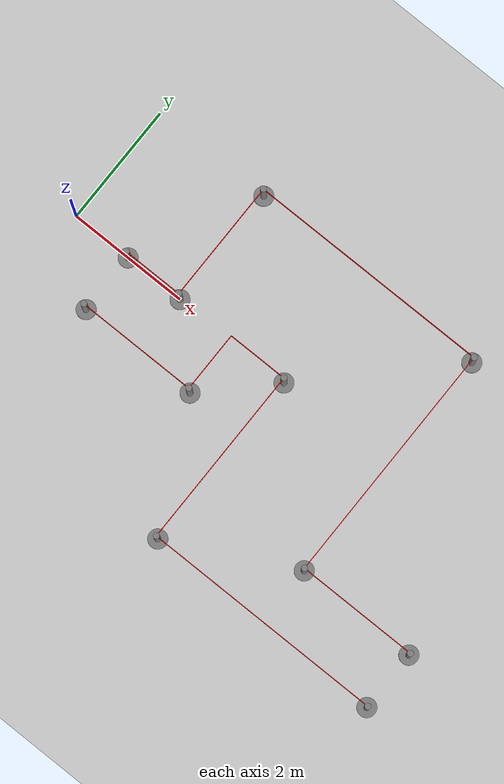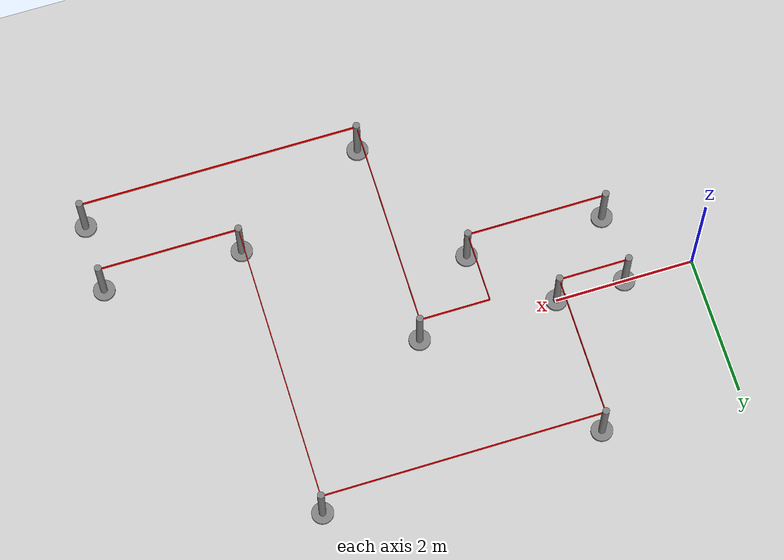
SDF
<?xml version="1.0" ?>
<sdf version='1.4'>
  <world name='default'>

    <physics type='ode'>
      <max_step_size>0.001</max_step_size>
      <real_time_factor>1</real_time_factor>
      <real_time_update_rate>1000</real_time_update_rate>
      <magnetic_field>34 0 -36</magnetic_field>
      <gravity>0 0 -9.8</gravity>
    </physics>

    <spherical_coordinates>
      <surface_model>EARTH_WGS84</surface_model>
      <latitude_deg>0</latitude_deg>
      <longitude_deg>0</longitude_deg>
      <elevation>0</elevation>
      <heading_deg>0</heading_deg>
    </spherical_coordinates>

    <!-- A global light source -->
   <scene>
      <sky>
        <clouds>
          <speed>12</speed>
        </clouds>
      </sky>
   </scene>

   <include>
     <uri>model://sun</uri>
   </include>

    <!-- A ground plane -->
    <include>
      <uri>model://ground_plane</uri>
    </include>

    <!-- A maze made of barrier with belt -->
    <include>
      <uri>model://barrier_with_belt_1</uri>
      <name>entrance_1</name>
      <pose>1 0 0 0 0 0</pose>
    </include>

    <include>
      <uri>model://barrier_with_belt_2</uri>
      <name>entrance_2</name>
      <pose>1 -1 0 0 0 0</pose>
    </include>

    <include>
      <uri>model://barrier_with_belt_2_dual</uri>
      <name>entrance_3</name>
      <pose>2 2 0 0 0 -1.5708</pose>
    </include>

    <include>
      <uri>model://barrier_with_belt_1_dual</uri>
      <name>entrance_4</name>
      <pose>3 -1 0 0 0 1.5708</pose>
    </include>

    <include>
      <uri>model://barrier_with_belt_2_dual</uri>
      <name>middle_1</name>
      <pose>6 2 0 0 0 3.141593</pose>
    </include>

    <include>
      <uri>model://barrier_with_belt_1_dual</uri>
      <name>middle_2</name>
      <pose>4 0 0 0 0 3.141593</pose>
    </include>

    <include>
      <uri>model://barrier_with_belt_2_dual</uri>
      <name>middle_3</name>
      <pose>4 -3 0 0 0 0</pose>
    </include>

   <include>
      <uri>model://barrier_with_belt_2_dual</uri>
      <name>middle_4</name>
      <pose>6 -2 0 0 0 0</pose>
    </include>

   <include>
      <uri>model://barrier_single</uri>
      <name>exit_1</name>
      <pose>8 -2 0 0 0 0</pose>
    </include>

   <include>
      <uri>model://barrier_single_with_2</uri>
      <name>exit_2</name>
      <pose>8 -3 0 0 0 3.1415926</pose>
    </include>

  </world>
</sdf>

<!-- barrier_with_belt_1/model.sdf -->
<sdf version='1.6'>
  <model name="barrier_with_belt_1">
    <static>true</static> <!-- Static model -->

    <!-- Base Plate_1 -->
    <link name="base1">
      <visual name="base1_visual">
        <geometry>
          <cylinder>
            <radius>0.155</radius> <!-- Diameter: 31 cm -->
            <length>0.04</length> <!-- Thickness: 4 cm -->
          </cylinder>
        </geometry>
        <material>
          <ambient>0.5 0.5 0.5 1</ambient> <!-- Grey color -->
        </material>
      </visual>
      <collision name="base1_collision">
        <geometry>
          <cylinder>
            <radius>0.155</radius>
            <length>0.04</length>
          </cylinder>
        </geometry>
      </collision>
      <pose>0 0 0.02 0 0 0</pose> <!-- Base at ground level -->
    </link>

    <!-- Base Plate_2 -->
    <link name="base2">
      <visual name="base2_visual">
        <geometry>
          <cylinder>
            <radius>0.155</radius> <!-- Diameter: 31 cm -->
            <length>0.04</length> <!-- Thickness: 4 cm -->
          </cylinder>
        </geometry>
        <material>
          <ambient>0.5 0.5 0.5 1</ambient> <!-- Grey color -->
        </material>
      </visual>
      <collision name="base2_collision">
        <geometry>
          <cylinder>
            <radius>0.155</radius>
            <length>0.04</length>
          </cylinder>
        </geometry>
      </collision>
      <pose>1 0 0.02 0 0 0</pose> <!-- Base at ground level -->
    </link>

    <!-- Pillar_1 -->
    <link name="cylinder1">
      <visual name="cylinder1_visual">
        <geometry>
          <cylinder>
            <radius>0.05</radius> <!-- Radius: 5 cm -->
            <length>0.89</length> <!-- Height: 89 cm -->
          </cylinder>
        </geometry>
        <material>
          <ambient>0.5 0.5 0.5 1</ambient> <!-- Grey color -->
        </material>
      </visual>
      <collision name="cylinder1_collision">
        <geometry>
          <cylinder>
            <radius>0.05</radius>
            <length>0.89</length>
          </cylinder>
        </geometry>
      </collision>
      <pose>0 0 0.46 0 0 0</pose> <!-- Placed on top of the base -->
    </link>

    <!-- Pillar_2 -->
    <link name="cylinder2">
      <visual name="cylinder2_visual">
        <geometry>
          <cylinder>
            <radius>0.05</radius> <!-- Radius: 5 cm -->
            <length>0.89</length> <!-- Height: 89 cm -->
          </cylinder>
        </geometry>
        <material>
          <ambient>0.5 0.5 0.5 1</ambient> <!-- Grey color -->
        </material>
      </visual>
      <collision name="cylinder2_collision">
        <geometry>
          <cylinder>
            <radius>0.05</radius>
            <length>0.89</length>
          </cylinder>
        </geometry>
      </collision>
      <pose>1 0 0.46 0 0 0</pose> <!-- Placed on top of the base -->
    </link>

    <!-- Belt -->
    <link name="tape">
      <visual name="tape_visual">
        <geometry>
          <box>
            <size>1.0 0.048 0.01</size> <!-- Length, Width, Thickness -->
          </box>
        </geometry>
        <material>
          <ambient>1 0 0 1</ambient> <!-- Red color -->
        </material>
      </visual>
      <collision name="tape_collision">
        <geometry>
          <box>
            <size>1.0 0.048 0.01</size>
          </box>
        </geometry>
      </collision>
      <pose>0.50 0 0.84 1.571 0 0</pose> <!-- Aligned with the pillar -->
    </link>

    <!-- Fixed Joints -->
    <joint name="cylinder1_to_base_1" type="fixed">
      <parent>base1</parent>
      <child>cylinder1</child>
    </joint>
    <joint name="cylinder2_to_base_2" type="fixed">
      <parent>base2</parent>
      <child>cylinder2</child>
    </joint>
    <joint name="cylinder1_to_tape" type="fixed">
      <parent>cylinder1</parent>
      <child>tape</child>
    </joint>
    <joint name="cylinder2_to_tape" type="fixed">
      <parent>cylinder2</parent>
      <child>tape</child>
    </joint>
  </model>
</sdf>

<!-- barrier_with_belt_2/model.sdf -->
<sdf version='1.6'>
  <model name="barrier_with_belt_2">
    <static>true</static> <!-- Static model -->

    <!-- Base Plate -->
    <link name="base1">
      <visual name="base1_visual">
        <geometry>
          <cylinder>
            <radius>0.155</radius> <!-- Diameter: 31 cm -->
            <length>0.04</length> <!-- Thickness: 4 cm -->
          </cylinder>
        </geometry>
        <material>
          <ambient>0.5 0.5 0.5 1</ambient> <!-- Grey color -->
        </material>
      </visual>
      <collision name="base1_collision">
        <geometry>
          <cylinder>
            <radius>0.155</radius>
            <length>0.04</length>
          </cylinder>
        </geometry>
      </collision>
      <pose>0 0 0.02 0 0 0</pose> <!-- Base at ground level -->
    </link>

    <!-- Pillar -->
    <link name="cylinder1">
      <visual name="cylinder1_visual">
        <geometry>
          <cylinder>
            <radius>0.05</radius> <!-- Radius: 5 cm -->
            <length>0.89</length> <!-- Height: 89 cm -->
          </cylinder>
        </geometry>
        <material>
          <ambient>0.5 0.5 0.5 1</ambient> <!-- Grey color -->
        </material>
      </visual>
      <collision name="cylinder1_collision">
        <geometry>
          <cylinder>
            <radius>0.05</radius>
            <length>0.89</length>
          </cylinder>
        </geometry>
      </collision>
      <pose>0 0 0.46 0 0 0</pose> <!-- Placed on top of the base -->
    </link>

    <!-- Belt -->
    <link name="tape">
      <visual name="tape_visual">
        <geometry>
          <box>
            <size>2.0 0.048 0.01</size> <!-- Length, Width, Thickness -->
          </box>
        </geometry>
        <material>
          <ambient>1 0 0 1</ambient> <!-- Red color -->
        </material>
      </visual>
      <collision name="tape_collision">
        <geometry>
          <box>
            <size>1.0 0.048 0.01</size>
          </box>
        </geometry>
      </collision>
      <pose>1.0 0 0.84 1.571 0 0</pose> <!-- Aligned with the pillar -->
    </link>

    <!-- Fixed Joints -->
    <joint name="cylinder1_to_base" type="fixed">
      <parent>base1</parent>
      <child>cylinder1</child>
    </joint>
    <joint name="cylinder1_to_tape" type="fixed">
      <parent>cylinder1</parent>
      <child>tape</child>
    </joint>

  </model>
</sdf>

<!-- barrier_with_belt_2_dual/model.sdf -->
<sdf version='1.6'>
  <model name="barrier_with_belt_1_dual">
    <static>true</static> <!-- Static model -->

    <!-- Base Plate -->
    <link name="base1">
      <visual name="base1_visual">
        <geometry>
          <cylinder>
            <radius>0.155</radius> <!-- Diameter: 31 cm -->
            <length>0.04</length> <!-- Thickness: 4 cm -->
          </cylinder>
        </geometry>
        <material>
          <ambient>0.5 0.5 0.5 1</ambient> <!-- Grey color -->
        </material>
      </visual>
      <collision name="base1_collision">
        <geometry>
          <cylinder>
            <radius>0.155</radius>
            <length>0.04</length>
          </cylinder>
        </geometry>
      </collision>
      <pose>0 0 0.02 0 0 0</pose> <!-- Base at ground level -->
    </link>

    <!-- Pillar -->
    <link name="cylinder1">
      <visual name="cylinder1_visual">
        <geometry>
          <cylinder>
            <radius>0.05</radius> <!-- Radius: 5 cm -->
            <length>0.89</length> <!-- Height: 89 cm -->
          </cylinder>
        </geometry>
        <material>
          <ambient>0.5 0.5 0.5 1</ambient> <!-- Grey color -->
        </material>
      </visual>
      <collision name="cylinder1_collision">
        <geometry>
          <cylinder>
            <radius>0.05</radius>
            <length>0.89</length>
          </cylinder>
        </geometry>
      </collision>
      <pose>0 0 0.46 0 0 0</pose> <!-- Placed on top of the base -->
    </link>

    <!-- Belt_1 -->
    <link name="tape_1">
      <visual name="tape_visual_1">
        <geometry>
          <box>
            <size>2.0 0.048 0.01</size> <!-- Length, Width, Thickness -->
          </box>
        </geometry>
        <material>
          <ambient>1 0 0 1</ambient> <!-- Red color -->
        </material>
      </visual>
      <collision name="tape_collision">
        <geometry>
          <box>
            <size>2.0 0.048 0.01</size>
          </box>
        </geometry>
      </collision>
      <pose>1.0 0 0.84 1.571 0 0</pose> <!-- Aligned with the pillar -->
    </link>

    <!-- Belt_2 -->
    <link name="tape_2">
      <visual name="tape_visual_2">
        <geometry>
          <box>
            <size>2.0 0.048 0.01</size> <!-- Length, Width, Thickness -->
          </box>
        </geometry>
        <material>
          <ambient>1 0 0 1</ambient> <!-- Red color -->
        </material>
      </visual>
      <collision name="tape_collision">
        <geometry>
          <box>
            <size>2.0 0.048 0.01</size>
          </box>
        </geometry>
      </collision>
      <pose>0 1.0 0.84 1.571 0 1.571</pose> <!-- Aligned with the pillar -->
    </link>

    <!-- Fixed Joints -->
    <joint name="cylinder1_to_base" type="fixed">
      <parent>base1</parent>
      <child>cylinder1</child>
    </joint>
    <joint name="cylinder1_to_tape_1" type="fixed">
      <parent>cylinder1</parent>
      <child>tape_1</child>
    </joint>
    <joint name="cylinder1_to_tape_2" type="fixed">
      <parent>cylinder1</parent>
      <child>tape_2</child>
    </joint>

  </model>
</sdf>

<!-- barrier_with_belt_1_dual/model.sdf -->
<sdf version='1.6'>
  <model name="barrier_with_belt_1_dual">
    <static>true</static> <!-- Static model -->

    <!-- Base Plate -->
    <link name="base1">
      <visual name="base1_visual">
        <geometry>
          <cylinder>
            <radius>0.155</radius> <!-- Diameter: 31 cm -->
            <length>0.04</length> <!-- Thickness: 4 cm -->
          </cylinder>
        </geometry>
        <material>
          <ambient>0.5 0.5 0.5 1</ambient> <!-- Grey color -->
        </material>
      </visual>
      <collision name="base1_collision">
        <geometry>
          <cylinder>
            <radius>0.155</radius>
            <length>0.04</length>
          </cylinder>
        </geometry>
      </collision>
      <pose>0 0 0.02 0 0 0</pose> <!-- Base at ground level -->
    </link>

    <!-- Pillar -->
    <link name="cylinder1">
      <visual name="cylinder1_visual">
        <geometry>
          <cylinder>
            <radius>0.05</radius> <!-- Radius: 5 cm -->
            <length>0.89</length> <!-- Height: 89 cm -->
          </cylinder>
        </geometry>
        <material>
          <ambient>0.5 0.5 0.5 1</ambient> <!-- Grey color -->
        </material>
      </visual>
      <collision name="cylinder1_collision">
        <geometry>
          <cylinder>
            <radius>0.05</radius>
            <length>0.89</length>
          </cylinder>
        </geometry>
      </collision>
      <pose>0 0 0.46 0 0 0</pose> <!-- Placed on top of the base -->
    </link>

    <!-- Belt_1 -->
    <link name="tape_1">
      <visual name="tape_visual_1">
        <geometry>
          <box>
            <size>1.0 0.048 0.01</size> <!-- Length, Width, Thickness -->
          </box>
        </geometry>
        <material>
          <ambient>1 0 0 1</ambient> <!-- Red color -->
        </material>
      </visual>
      <collision name="tape_collision">
        <geometry>
          <box>
            <size>1.0 0.048 0.01</size>
          </box>
        </geometry>
      </collision>
      <pose>0.50 0 0.84 1.571 0 0</pose> <!-- Aligned with the pillar -->
    </link>

    <!-- Belt_2 -->
    <link name="tape_2">
      <visual name="tape_visual_2">
        <geometry>
          <box>
            <size>1.0 0.048 0.01</size> <!-- Length, Width, Thickness -->
          </box>
        </geometry>
        <material>
          <ambient>1 0 0 1</ambient> <!-- Red color -->
        </material>
      </visual>
      <collision name="tape_collision">
        <geometry>
          <box>
            <size>1.0 0.048 0.01</size>
          </box>
        </geometry>
      </collision>
      <pose>0 0.5 0.84 1.571 0 1.571</pose> <!-- Aligned with the pillar -->
    </link>

    <!-- Fixed Joints -->
    <joint name="cylinder1_to_base" type="fixed">
      <parent>base1</parent>
      <child>cylinder1</child>
    </joint>
    <joint name="cylinder1_to_tape_1" type="fixed">
      <parent>cylinder1</parent>
      <child>tape_1</child>
    </joint>
    <joint name="cylinder1_to_tape_2" type="fixed">
      <parent>cylinder1</parent>
      <child>tape_2</child>
    </joint>

  </model>
</sdf>

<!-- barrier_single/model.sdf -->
<sdf version='1.6'>
  <model name="barrier_with_belt_1">
    <static>true</static> <!-- Static model -->

    <!-- Base Plate_1 -->
    <link name="base1">
      <visual name="base1_visual">
        <geometry>
          <cylinder>
            <radius>0.155</radius> <!-- Diameter: 31 cm -->
            <length>0.04</length> <!-- Thickness: 4 cm -->
          </cylinder>
        </geometry>
        <material>
          <ambient>0.5 0.5 0.5 1</ambient> <!-- Grey color -->
        </material>
      </visual>
      <collision name="base1_collision">
        <geometry>
          <cylinder>
            <radius>0.155</radius>
            <length>0.04</length>
          </cylinder>
        </geometry>
      </collision>
      <pose>0 0 0.02 0 0 0</pose> <!-- Base at ground level -->
    </link>

    <!-- Pillar_1 -->
    <link name="cylinder1">
      <visual name="cylinder1_visual">
        <geometry>
          <cylinder>
            <radius>0.05</radius> <!-- Radius: 5 cm -->
            <length>0.89</length> <!-- Height: 89 cm -->
          </cylinder>
        </geometry>
        <material>
          <ambient>0.5 0.5 0.5 1</ambient> <!-- Grey color -->
        </material>
      </visual>
      <collision name="cylinder1_collision">
        <geometry>
          <cylinder>
            <radius>0.05</radius>
            <length>0.89</length>
          </cylinder>
        </geometry>
      </collision>
      <pose>0 0 0.46 0 0 0</pose> <!-- Placed on top of the base -->
    </link>

    <!-- Fixed Joints -->
    <joint name="cylinder1_to_base_1" type="fixed">
      <parent>base1</parent>
      <child>cylinder1</child>
    </joint>
  </model>
</sdf>

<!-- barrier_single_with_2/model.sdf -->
<sdf version='1.6'>
  <model name="barrier_with_belt_2">
    <static>true</static> <!-- Static model -->

    <!-- Base Plate -->
    <link name="base1">
      <visual name="base1_visual">
        <geometry>
          <cylinder>
            <radius>0.155</radius> <!-- Diameter: 31 cm -->
            <length>0.04</length> <!-- Thickness: 4 cm -->
          </cylinder>
        </geometry>
        <material>
          <ambient>0.5 0.5 0.5 1</ambient> <!-- Grey color -->
        </material>
      </visual>
      <collision name="base1_collision">
        <geometry>
          <cylinder>
            <radius>0.155</radius>
            <length>0.04</length>
          </cylinder>
        </geometry>
      </collision>
      <pose>0 0 0.02 0 0 0</pose> <!-- Base at ground level -->
    </link>

    <!-- Pillar -->
    <link name="cylinder1">
      <visual name="cylinder1_visual">
        <geometry>
          <cylinder>
            <radius>0.05</radius> <!-- Radius: 5 cm -->
            <length>0.89</length> <!-- Height: 89 cm -->
          </cylinder>
        </geometry>
        <material>
          <ambient>0.5 0.5 0.5 1</ambient> <!-- Grey color -->
        </material>
      </visual>
      <collision name="cylinder1_collision">
        <geometry>
          <cylinder>
            <radius>0.05</radius>
            <length>0.89</length>
          </cylinder>
        </geometry>
      </collision>
      <pose>0 0 0.46 0 0 0</pose> <!-- Placed on top of the base -->
    </link>

    <!-- Belt -->
    <link name="tape">
      <visual name="tape_visual">
        <geometry>
          <box>
            <size>2.0 0.048 0.01</size> <!-- Length, Width, Thickness -->
          </box>
        </geometry>
        <material>
          <ambient>1 0 0 1</ambient> <!-- Red color -->
        </material>
      </visual>
      <collision name="tape_collision">
        <geometry>
          <box>
            <size>2.0 0.048 0.01</size>
          </box>
        </geometry>
      </collision>
      <pose>1.0 0 0.84 1.571 0 0</pose> <!-- Aligned with the pillar -->
    </link>

    <!-- Fixed Joints -->
    <joint name="cylinder1_to_base" type="fixed">
      <parent>base1</parent>
      <child>cylinder1</child>
    </joint>
    <joint name="cylinder1_to_tape" type="fixed">
      <parent>cylinder1</parent>
      <child>tape</child>
    </joint>

  </model>
</sdf>
